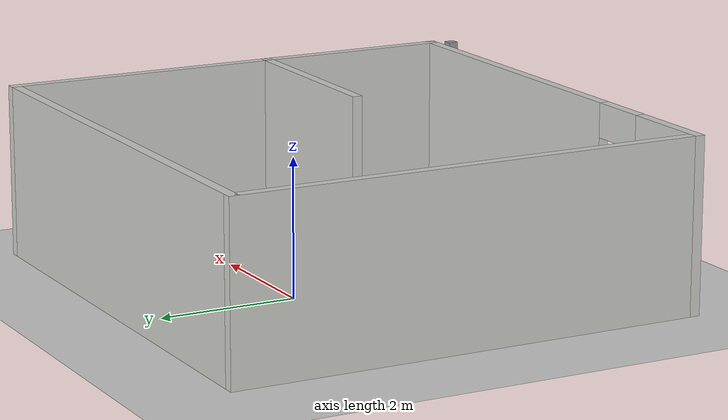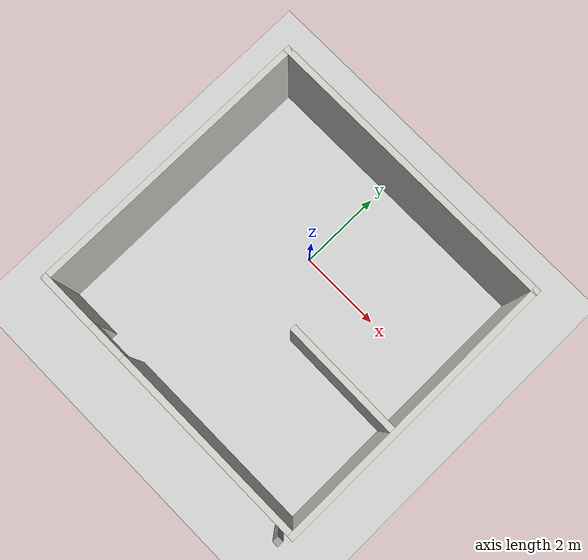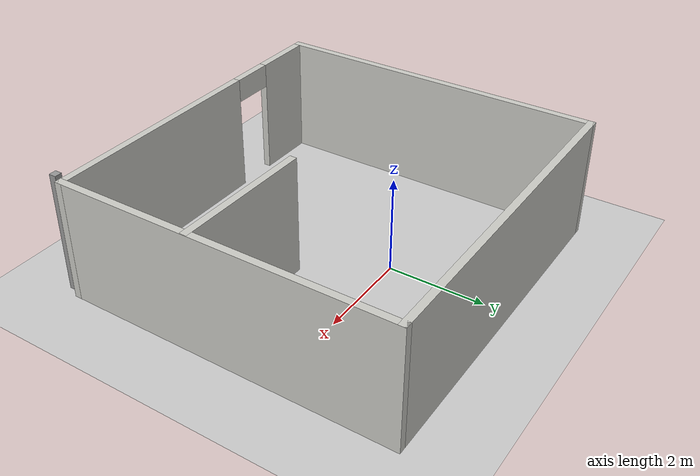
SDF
<sdf version="1.7">
 <world name="default">
  <light name="sun" type="directional">
   <pose>0 0 10 0 -0 0</pose>
   <diffuse>0.8 0.8 0.8 1</diffuse>
   <specular>0.2 0.2 0.2 1</specular>
   <attenuation>
    <range>1000</range>
    <constant>0.9</constant>
    <linear>0.01</linear>
    <quadratic>0.001</quadratic>
   </attenuation>
   <direction>-0.5 0.1 -0.9</direction>
   <spot><inner_angle>0</inner_angle><outer_angle>0</outer_angle><falloff>0</falloff></spot>
  </light>
  <model name="ground_plane">
   <static>1</static>
   <link name="link">
    <collision name="collision">
     <geometry><plane><normal>0 0 1</normal><size>100 100</size></plane></geometry>
     <surface><friction><ode><mu>100</mu><mu2>50</mu2></ode></friction></surface>
    </collision>
    <visual name="visual">
     <cast_shadows>0</cast_shadows>
     <geometry><plane><normal>0 0 1</normal><size>100 100</size></plane></geometry>
     <material>
      <script><uri>file://media/materials/scripts/gazebo.material</uri><name>Gazebo/Grey</name></script>
     </material>
    </visual>
   </link>
  </model>
  <gravity>0 0 -9.8</gravity>
  <magnetic_field>6e-06 2.3e-05 -4.2e-05</magnetic_field>
  <atmosphere type="adiabatic"/>
  <physics type="ode">
   <max_step_size>0.001</max_step_size>
   <real_time_factor>1</real_time_factor>
   <real_time_update_rate>1000</real_time_update_rate>
  </physics>
  <scene><ambient>0.4 0.4 0.4 1</ambient><background>0.7 0.7 0.7 1</background><shadows>1</shadows></scene>
  <audio><device>default</device></audio>
  <spherical_coordinates>
   <surface_model>EARTH_WGS84</surface_model>
   <latitude_deg>0</latitude_deg>
   <longitude_deg>0</longitude_deg>
   <elevation>0</elevation>
   <heading_deg>0</heading_deg>
  </spherical_coordinates>
  <model name="TestRoom.sdf">
   <pose>0.398713 -1.09451 0 0 -0 0</pose>
   <link name="Wall_10">
    <collision name="Wall_10_Collision">
     <geometry><box><size>7 0.15 2.5</size></box></geometry>
     <pose>0 0 1.25 0 -0 0</pose>
    </collision>
    <visual name="Wall_10_Visual">
     <pose>0 0 1.25 0 -0 0</pose>
     <geometry><box><size>7 0.15 2.5</size></box></geometry>
     <material>
      <script><uri>file://media/materials/scripts/gazebo.material</uri><name>Gazebo/CeilingTiled</name></script>
      <ambient>1 1 1 1</ambient>
     </material>
     <meta><layer>0</layer></meta>
    </visual>
    <pose>3.50716 0.136292 0 0 -0 -1.5708</pose>
   </link>
   <link name="Wall_11">
    <pose>-0.042836 -3.28871 0 0 -0 3.14159</pose>
    <visual name="Wall_11_Visual_0">
     <pose>-1.1604 0 1.25 0 -0 0</pose>
     <geometry><box><size>4.9292 0.15 2.5</size></box></geometry>
     <material>
      <script><uri>file://media/materials/scripts/gazebo.material</uri><name>Gazebo/CeilingTiled</name></script>
      <ambient>1 1 1 1</ambient>
     </material>
     <meta><layer>0</layer></meta>
    </visual>
    <collision name="Wall_11_Collision_0">
     <geometry><box><size>4.9292 0.15 2.5</size></box></geometry>
     <pose>-1.1604 0 1.25 0 -0 0</pose>
    </collision>
    <visual name="Wall_11_Visual_1">
     <pose>2.9146 0 1.25 0 -0 0</pose>
     <geometry><box><size>1.4208 0.15 2.5</size></box></geometry>
     <material>
      <script><uri>file://media/materials/scripts/gazebo.material</uri><name>Gazebo/CeilingTiled</name></script>
      <ambient>1 1 1 1</ambient>
     </material>
     <meta><layer>0</layer></meta>
    </visual>
    <collision name="Wall_11_Collision_1">
     <geometry><box><size>1.4208 0.15 2.5</size></box></geometry>
     <pose>2.9146 0 1.25 0 -0 0</pose>
    </collision>
    <visual name="Wall_11_Visual_2">
     <pose>1.7542 0 2.25 0 -0 0</pose>
     <geometry><box><size>0.9 0.15 0.5</size></box></geometry>
     <material>
      <script><uri>file://media/materials/scripts/gazebo.material</uri><name>Gazebo/CeilingTiled</name></script>
      <ambient>1 1 1 1</ambient>
     </material>
     <meta><layer>0</layer></meta>
    </visual>
    <collision name="Wall_11_Collision_2">
     <geometry><box><size>0.9 0.15 0.5</size></box></geometry>
     <pose>1.7542 0 2.25 0 -0 0</pose>
    </collision>
   </link>
   <link name="Wall_16">
    <collision name="Wall_16_Collision">
     <geometry><box><size>2.96958 0.15 2.5</size></box></geometry>
     <pose>0 0 1.25 0 -0 0</pose>
    </collision>
    <visual name="Wall_16_Visual">
     <pose>0 0 1.25 0 -0 0</pose>
     <geometry><box><size>2.96958 0.15 2.5</size></box></geometry>
     <material>
      <script><uri>file://media/materials/scripts/gazebo.material</uri><name>Gazebo/CeilingTiled</name></script>
      <ambient>1 1 1 1</ambient>
     </material>
     <meta><layer>0</layer></meta>
    </visual>
    <pose>2.08537 -0.448736 0 0 -0 3.13074</pose>
   </link>
   <link name="Wall_3">
    <collision name="Wall_3_Collision">
     <geometry><box><size>0.15 0.15 2.5</size></box></geometry>
     <pose>0 0 1.25 0 -0 0</pose>
    </collision>
    <visual name="Wall_3_Visual">
     <pose>0 0 1.25 0 -0 0</pose>
     <geometry><box><size>0.15 0.15 2.5</size></box></geometry>
     <material>
      <script><uri>file://media/materials/scripts/gazebo.material</uri><name>Gazebo/Grey</name></script>
      <ambient>1 1 1 1</ambient>
     </material>
     <meta><layer>0</layer></meta>
    </visual>
    <pose>3.37754 -3.56129 0 0 -0 0</pose>
   </link>
   <link name="Wall_8">
    <collision name="Wall_8_Collision">
     <geometry><box><size>7 0.15 2.5</size></box></geometry>
     <pose>0 0 1.25 0 -0 0</pose>
    </collision>
    <visual name="Wall_8_Visual">
     <pose>0 0 1.25 0 -0 0</pose>
     <geometry><box><size>7 0.15 2.5</size></box></geometry>
     <material>
      <script><uri>file://media/materials/scripts/gazebo.material</uri><name>Gazebo/CeilingTiled</name></script>
      <ambient>1 1 1 1</ambient>
     </material>
     <meta><layer>0</layer></meta>
    </visual>
    <pose>-3.59284 0.136292 0 0 -0 1.5708</pose>
   </link>
   <link name="Wall_9">
    <collision name="Wall_9_Collision">
     <geometry><box><size>7.25 0.15 2.5</size></box></geometry>
     <pose>0 0 1.25 0 -0 0</pose>
    </collision>
    <visual name="Wall_9_Visual">
     <pose>0 0 1.25 0 -0 0</pose>
     <geometry><box><size>7.25 0.15 2.5</size></box></geometry>
     <material>
      <script><uri>file://media/materials/scripts/gazebo.material</uri><name>Gazebo/CeilingTiled</name></script>
      <ambient>1 1 1 1</ambient>
     </material>
     <meta><layer>0</layer></meta>
    </visual>
    <pose>-0.042836 3.56129 0 0 -0 0</pose>
   </link>
   <static>1</static>
  </model>
 </world>
</sdf>
